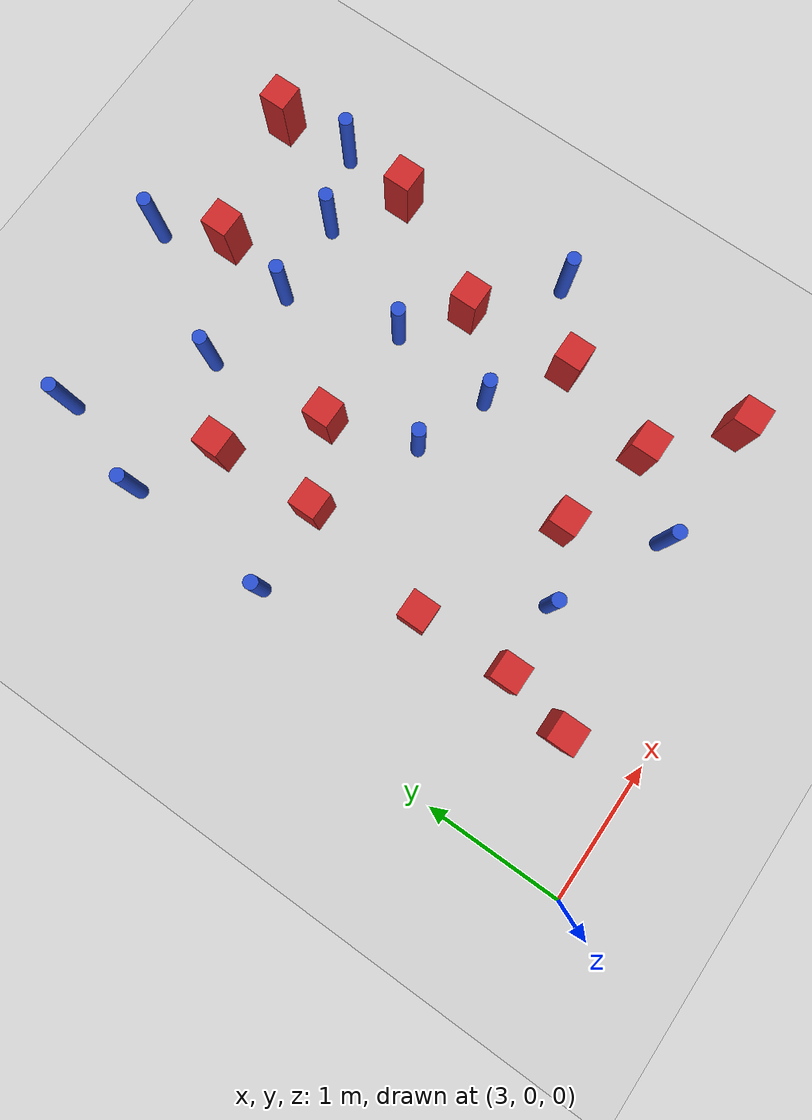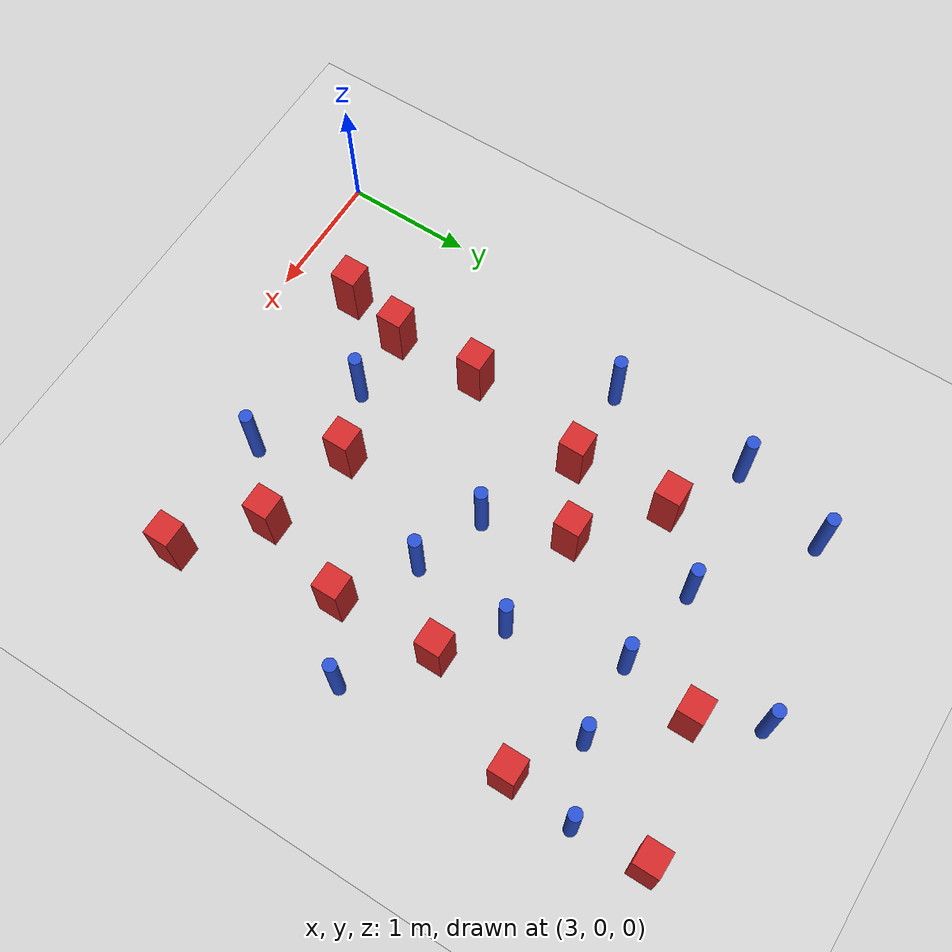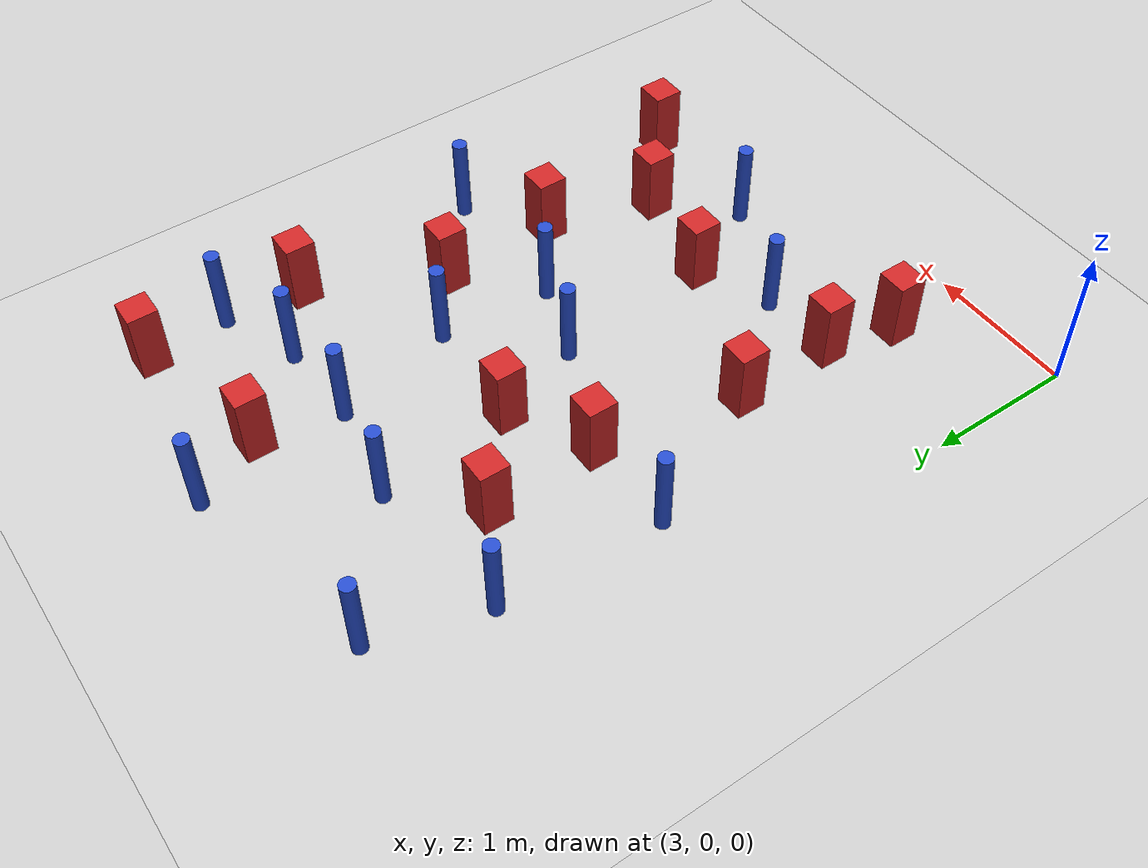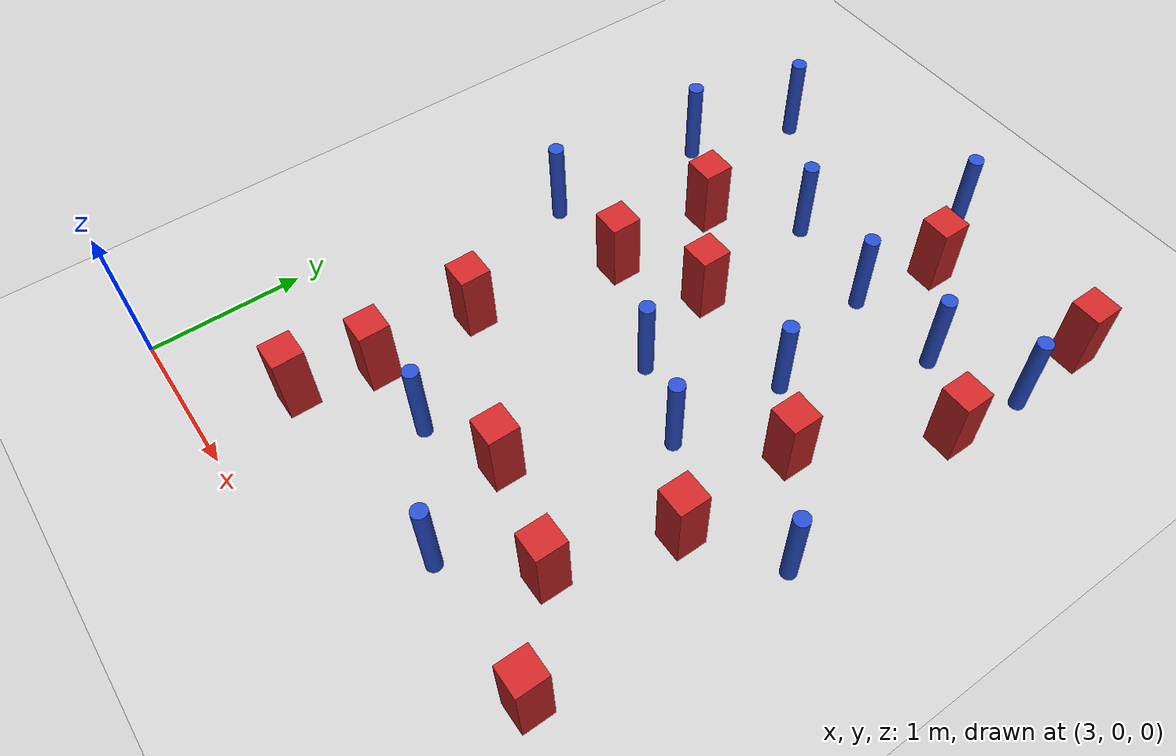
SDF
<sdf version="1.6">
 <world name="default">
  <model name="ground_plane">
   <static>1</static>
   <link name="link">
    <collision name="collision">
     <geometry><plane><normal>0 0 1</normal><size>100 100</size></plane></geometry>
     <surface><friction><ode><mu>100</mu><mu2>50</mu2></ode></friction></surface>
    </collision>
    <visual name="visual">
     <cast_shadows>0</cast_shadows>
     <geometry><plane><normal>0 0 1</normal><size>100 100</size></plane></geometry>
     <material>
      <ambient>1.0 1.0 1.0 1.0</ambient>
      <diffuse>0.8 0.8 0.8 1.0</diffuse>
      <specular>0.01 0.01 0.01 1.000000</specular>
     </material>
    </visual>
   </link>
  </model>
  <model name="square_post_obstacle26">
   <static>true</static>
   <pose>5.01945218155 1.30761017633 1.91545236811e-07 -7.35059704564e-06 1.12565212e-07 2.39332434364e-05</pose>
   <link name="link">
    <pose>0 0 0.25 0 -0 0</pose>
    <inertial>
     <mass>100</mass>
     <inertia>
      <ixx>0.166667</ixx>
      <ixy>0</ixy>
      <ixz>0</ixz>
      <iyy>0.166667</iyy>
      <iyz>0</iyz>
      <izz>0.166667</izz>
     </inertia>
    </inertial>
    <collision name="collision"><geometry><box><size>.2 .2 .5</size></box></geometry></collision>
    <visual name="visual">
     <geometry><box><size>.2 .2 .5</size></box></geometry>
     <material>
      <script><name>Gazebo/Red</name><uri>file://media/materials/scripts/gazebo.material</uri></script>
     </material>
    </visual>
   </link>
  </model>
  <model name="pole_obstacle21">
   <static>true</static>
   <pose>3.57852306725 3.81296826956 7.38925637345e-09 -8.47170692798e-08 1.24976764939e-08 -1.74513093025e-07</pose>
   <link name="link">
    <pose>0 0 0.3 0 -0 0</pose>
    <inertial>
     <mass>1</mass>
     <inertia><ixx>0.145833</ixx><ixy>0</ixy><ixz>0</ixz><iyy>0.145833</iyy><iyz>0</iyz><izz>0.125</izz></inertia>
    </inertial>
    <collision name="collision">
     <geometry><cylinder><radius>0.05</radius><length>.6</length></cylinder></geometry>
    </collision>
    <visual name="visual">
     <geometry><cylinder><radius>0.05</radius><length>.6</length></cylinder></geometry>
     <material>
      <script><name>Gazebo/Blue</name><uri>file://media/materials/scripts/gazebo.material</uri></script>
     </material>
    </visual>
   </link>
  </model>
  <model name="square_post_obstacle33">
   <static>true</static>
   <pose>6.36885371622 3.54152186159 1.91545236811e-07 -7.35059704564e-06 1.12565212e-07 2.39332434364e-05</pose>
   <link name="link">
    <pose>0 0 0.25 0 -0 0</pose>
    <inertial>
     <mass>100</mass>
     <inertia>
      <ixx>0.166667</ixx>
      <ixy>0</ixy>
      <ixz>0</ixz>
      <iyy>0.166667</iyy>
      <iyz>0</iyz>
      <izz>0.166667</izz>
     </inertia>
    </inertial>
    <collision name="collision"><geometry><box><size>.2 .2 .5</size></box></geometry></collision>
    <visual name="visual">
     <geometry><box><size>.2 .2 .5</size></box></geometry>
     <material>
      <script><name>Gazebo/Red</name><uri>file://media/materials/scripts/gazebo.material</uri></script>
     </material>
    </visual>
   </link>
  </model>
  <model name="pole_obstacle34">
   <static>true</static>
   <pose>4.60796828757 3.93987516932 7.38925637345e-09 -8.47170692798e-08 1.24976764937e-08 -1.74513093023e-07</pose>
   <link name="link">
    <pose>0 0 0.3 0 -0 0</pose>
    <inertial>
     <mass>1</mass>
     <inertia><ixx>0.145833</ixx><ixy>0</ixy><ixz>0</ixz><iyy>0.145833</iyy><iyz>0</iyz><izz>0.125</izz></inertia>
    </inertial>
    <collision name="collision">
     <geometry><cylinder><radius>0.05</radius><length>.6</length></cylinder></geometry>
    </collision>
    <visual name="visual">
     <geometry><cylinder><radius>0.05</radius><length>.6</length></cylinder></geometry>
     <material>
      <script><name>Gazebo/Blue</name><uri>file://media/materials/scripts/gazebo.material</uri></script>
     </material>
    </visual>
   </link>
  </model>
  <model name="pole_obstacle40">
   <static>true</static>
   <pose>5.30371421879 0.694664891359 7.38925637345e-09 -8.47170692799e-08 1.24976765038e-08 -1.74513093018e-07</pose>
   <link name="link">
    <pose>0 0 0.3 0 -0 0</pose>
    <inertial>
     <mass>1</mass>
     <inertia><ixx>0.145833</ixx><ixy>0</ixy><ixz>0</ixz><iyy>0.145833</iyy><iyz>0</iyz><izz>0.125</izz></inertia>
    </inertial>
    <collision name="collision">
     <geometry><cylinder><radius>0.05</radius><length>.6</length></cylinder></geometry>
    </collision>
    <visual name="visual">
     <geometry><cylinder><radius>0.05</radius><length>.6</length></cylinder></geometry>
     <material>
      <script><name>Gazebo/Blue</name><uri>file://media/materials/scripts/gazebo.material</uri></script>
     </material>
    </visual>
   </link>
  </model>
  <model name="square_post_obstacle56">
   <static>true</static>
   <pose>3.97602311547 1.76277531821 1.91545236811e-07 -7.35059704564e-06 1.12565212e-07 2.39332434364e-05</pose>
   <link name="link">
    <pose>0 0 0.25 0 -0 0</pose>
    <inertial>
     <mass>100</mass>
     <inertia>
      <ixx>0.166667</ixx>
      <ixy>0</ixy>
      <ixz>0</ixz>
      <iyy>0.166667</iyy>
      <iyz>0</iyz>
      <izz>0.166667</izz>
     </inertia>
    </inertial>
    <collision name="collision"><geometry><box><size>.2 .2 .5</size></box></geometry></collision>
    <visual name="visual">
     <geometry><box><size>.2 .2 .5</size></box></geometry>
     <material>
      <script><name>Gazebo/Red</name><uri>file://media/materials/scripts/gazebo.material</uri></script>
     </material>
    </visual>
   </link>
  </model>
  <model name="square_post_obstacle58">
   <static>true</static>
   <pose>5.92137590437 2.68245180076 1.91545236811e-07 -7.35059704564e-06 1.12565212e-07 2.39332434364e-05</pose>
   <link name="link">
    <pose>0 0 0.25 0 -0 0</pose>
    <inertial>
     <mass>100</mass>
     <inertia>
      <ixx>0.166667</ixx>
      <ixy>0</ixy>
      <ixz>0</ixz>
      <iyy>0.166667</iyy>
      <iyz>0</iyz>
      <izz>0.166667</izz>
     </inertia>
    </inertial>
    <collision name="collision"><geometry><box><size>.2 .2 .5</size></box></geometry></collision>
    <visual name="visual">
     <geometry><box><size>.2 .2 .5</size></box></geometry>
     <material>
      <script><name>Gazebo/Red</name><uri>file://media/materials/scripts/gazebo.material</uri></script>
     </material>
    </visual>
   </link>
  </model>
  <model name="square_post_obstacle61">
   <static>true</static>
   <pose>5.73949888242 1.13760612837 1.91545236811e-07 -7.35059704564e-06 1.12565212e-07 2.39332434364e-05</pose>
   <link name="link">
    <pose>0 0 0.25 0 -0 0</pose>
    <inertial>
     <mass>100</mass>
     <inertia>
      <ixx>0.166667</ixx>
      <ixy>0</ixy>
      <ixz>0</ixz>
      <iyy>0.166667</iyy>
      <iyz>0</iyz>
      <izz>0.166667</izz>
     </inertia>
    </inertial>
    <collision name="collision"><geometry><box><size>.2 .2 .5</size></box></geometry></collision>
    <visual name="visual">
     <geometry><box><size>.2 .2 .5</size></box></geometry>
     <material>
      <script><name>Gazebo/Red</name><uri>file://media/materials/scripts/gazebo.material</uri></script>
     </material>
    </visual>
   </link>
  </model>
  <model name="square_post_obstacle64">
   <static>true</static>
   <pose>4.16203594431 2.74365635211 1.91545236811e-07 -7.35059704564e-06 1.12565212e-07 2.39332434364e-05</pose>
   <link name="link">
    <pose>0 0 0.25 0 -0 0</pose>
    <inertial>
     <mass>100</mass>
     <inertia>
      <ixx>0.166667</ixx>
      <ixy>0</ixy>
      <ixz>0</ixz>
      <iyy>0.166667</iyy>
      <iyz>0</iyz>
      <izz>0.166667</izz>
     </inertia>
    </inertial>
    <collision name="collision"><geometry><box><size>.2 .2 .5</size></box></geometry></collision>
    <visual name="visual">
     <geometry><box><size>.2 .2 .5</size></box></geometry>
     <material>
      <script><name>Gazebo/Red</name><uri>file://media/materials/scripts/gazebo.material</uri></script>
     </material>
    </visual>
   </link>
  </model>
  <model name="pole_obstacle72">
   <static>true</static>
   <pose>5.28883919184 3.82008956437 7.38925637345e-09 -8.47170692798e-08 1.24976764937e-08 -1.74513093023e-07</pose>
   <link name="link">
    <pose>0 0 0.3 0 -0 0</pose>
    <inertial>
     <mass>1</mass>
     <inertia><ixx>0.145833</ixx><ixy>0</ixy><ixz>0</ixz><iyy>0.145833</iyy><iyz>0</iyz><izz>0.125</izz></inertia>
    </inertial>
    <collision name="collision">
     <geometry><cylinder><radius>0.05</radius><length>.6</length></cylinder></geometry>
    </collision>
    <visual name="visual">
     <geometry><cylinder><radius>0.05</radius><length>.6</length></cylinder></geometry>
     <material>
      <script><name>Gazebo/Blue</name><uri>file://media/materials/scripts/gazebo.material</uri></script>
     </material>
    </visual>
   </link>
  </model>
  <model name="pole_obstacle77">
   <static>true</static>
   <pose>5.5066604686 2.98591496148 7.38925637345e-09 -8.47170692798e-08 1.24976764937e-08 -1.74513093023e-07</pose>
   <link name="link">
    <pose>0 0 0.3 0 -0 0</pose>
    <inertial>
     <mass>1</mass>
     <inertia><ixx>0.145833</ixx><ixy>0</ixy><ixz>0</ixz><iyy>0.145833</iyy><iyz>0</iyz><izz>0.125</izz></inertia>
    </inertial>
    <collision name="collision">
     <geometry><cylinder><radius>0.05</radius><length>.6</length></cylinder></geometry>
    </collision>
    <visual name="visual">
     <geometry><cylinder><radius>0.05</radius><length>.6</length></cylinder></geometry>
     <material>
      <script><name>Gazebo/Blue</name><uri>file://media/materials/scripts/gazebo.material</uri></script>
     </material>
    </visual>
   </link>
  </model>
  <model name="pole_obstacle84">
   <static>true</static>
   <pose>5.8953983592 3.85170807815 7.38925637345e-09 -8.47170692798e-08 1.24976764937e-08 -1.74513093023e-07</pose>
   <link name="link">
    <pose>0 0 0.3 0 -0 0</pose>
    <inertial>
     <mass>1</mass>
     <inertia><ixx>0.145833</ixx><ixy>0</ixy><ixz>0</ixz><iyy>0.145833</iyy><iyz>0</iyz><izz>0.125</izz></inertia>
    </inertial>
    <collision name="collision">
     <geometry><cylinder><radius>0.05</radius><length>.6</length></cylinder></geometry>
    </collision>
    <visual name="visual">
     <geometry><cylinder><radius>0.05</radius><length>.6</length></cylinder></geometry>
     <material>
      <script><name>Gazebo/Blue</name><uri>file://media/materials/scripts/gazebo.material</uri></script>
     </material>
    </visual>
   </link>
  </model>
  <model name="pole_obstacle98">
   <static>true</static>
   <pose>3.79694006744 4.54510872652 7.38925637345e-09 -8.47170692798e-08 1.24976765033e-08 -1.74513093019e-07</pose>
   <link name="link">
    <pose>0 0 0.3 0 -0 0</pose>
    <inertial>
     <mass>1</mass>
     <inertia><ixx>0.145833</ixx><ixy>0</ixy><ixz>0</ixz><iyy>0.145833</iyy><iyz>0</iyz><izz>0.125</izz></inertia>
    </inertial>
    <collision name="collision">
     <geometry><cylinder><radius>0.05</radius><length>.6</length></cylinder></geometry>
    </collision>
    <visual name="visual">
     <geometry><cylinder><radius>0.05</radius><length>.6</length></cylinder></geometry>
     <material>
      <script><name>Gazebo/Blue</name><uri>file://media/materials/scripts/gazebo.material</uri></script>
     </material>
    </visual>
   </link>
  </model>
  <model name="square_post_obstacle91">
   <static>true</static>
   <pose>3.99244737672 1.07233325912 1.91545236811e-07 -7.35059704564e-06 1.12565212e-07 2.39332434364e-05</pose>
   <link name="link">
    <pose>0 0 0.25 0 -0 0</pose>
    <inertial>
     <mass>100</mass>
     <inertia>
      <ixx>0.166667</ixx>
      <ixy>0</ixy>
      <ixz>0</ixz>
      <iyy>0.166667</iyy>
      <iyz>0</iyz>
      <izz>0.166667</izz>
     </inertia>
    </inertial>
    <collision name="collision"><geometry><box><size>.2 .2 .5</size></box></geometry></collision>
    <visual name="visual">
     <geometry><box><size>.2 .2 .5</size></box></geometry>
     <material>
      <script><name>Gazebo/Red</name><uri>file://media/materials/scripts/gazebo.material</uri></script>
     </material>
    </visual>
   </link>
  </model>
  <model name="pole_obstacle106">
   <static>true</static>
   <pose>4.51753531283 1.08375698569 7.38925637345e-09 -8.471706928e-08 1.24976765134e-08 -1.74513093015e-07</pose>
   <link name="link">
    <pose>0 0 0.3 0 -0 0</pose>
    <inertial>
     <mass>1</mass>
     <inertia><ixx>0.145833</ixx><ixy>0</ixy><ixz>0</ixz><iyy>0.145833</iyy><iyz>0</iyz><izz>0.125</izz></inertia>
    </inertial>
    <collision name="collision">
     <geometry><cylinder><radius>0.05</radius><length>.6</length></cylinder></geometry>
    </collision>
    <visual name="visual">
     <geometry><cylinder><radius>0.05</radius><length>.6</length></cylinder></geometry>
     <material>
      <script><name>Gazebo/Blue</name><uri>file://media/materials/scripts/gazebo.material</uri></script>
     </material>
    </visual>
   </link>
  </model>
  <model name="pole_obstacle119">
   <static>true</static>
   <pose>6.4260833534 4.06566936149 7.38925637345e-09 -8.47170692796e-08 1.24976764786e-08 -1.74513093032e-07</pose>
   <link name="link">
    <pose>0 0 0.3 0 -0 0</pose>
    <inertial>
     <mass>1</mass>
     <inertia><ixx>0.145833</ixx><ixy>0</ixy><ixz>0</ixz><iyy>0.145833</iyy><iyz>0</iyz><izz>0.125</izz></inertia>
    </inertial>
    <collision name="collision">
     <geometry><cylinder><radius>0.05</radius><length>.6</length></cylinder></geometry>
    </collision>
    <visual name="visual">
     <geometry><cylinder><radius>0.05</radius><length>.6</length></cylinder></geometry>
     <material>
      <script><name>Gazebo/Blue</name><uri>file://media/materials/scripts/gazebo.material</uri></script>
     </material>
    </visual>
   </link>
  </model>
  <model name="pole_obstacle125">
   <static>true</static>
   <pose>3.51871331285 2.71443841695 7.38925637345e-09 -8.47170692798e-08 1.24976764939e-08 -1.74513093025e-07</pose>
   <link name="link">
    <pose>0 0 0.3 0 -0 0</pose>
    <inertial>
     <mass>1</mass>
     <inertia><ixx>0.145833</ixx><ixy>0</ixy><ixz>0</ixz><iyy>0.145833</iyy><iyz>0</iyz><izz>0.125</izz></inertia>
    </inertial>
    <collision name="collision">
     <geometry><cylinder><radius>0.05</radius><length>.6</length></cylinder></geometry>
    </collision>
    <visual name="visual">
     <geometry><cylinder><radius>0.05</radius><length>.6</length></cylinder></geometry>
     <material>
      <script><name>Gazebo/Blue</name><uri>file://media/materials/scripts/gazebo.material</uri></script>
     </material>
    </visual>
   </link>
  </model>
  <model name="square_post_obstacle119">
   <static>true</static>
   <pose>6.26309046809 0.683885494542 1.91545236811e-07 -7.35059704564e-06 1.12565212e-07 2.39332434364e-05</pose>
   <link name="link">
    <pose>0 0 0.25 0 -0 0</pose>
    <inertial>
     <mass>100</mass>
     <inertia>
      <ixx>0.166667</ixx>
      <ixy>0</ixy>
      <ixz>0</ixz>
      <iyy>0.166667</iyy>
      <iyz>0</iyz>
      <izz>0.166667</izz>
     </inertia>
    </inertial>
    <collision name="collision"><geometry><box><size>.2 .2 .5</size></box></geometry></collision>
    <visual name="visual">
     <geometry><box><size>.2 .2 .5</size></box></geometry>
     <material>
      <script><name>Gazebo/Red</name><uri>file://media/materials/scripts/gazebo.material</uri></script>
     </material>
    </visual>
   </link>
  </model>
  <model name="square_post_obstacle138">
   <static>true</static>
   <pose>5.38997732978 4.37417145799 1.91545236811e-07 -7.35059704564e-06 1.12565212e-07 2.39332434364e-05</pose>
   <link name="link">
    <pose>0 0 0.25 0 -0 0</pose>
    <inertial>
     <mass>100</mass>
     <inertia>
      <ixx>0.166667</ixx>
      <ixy>0</ixy>
      <ixz>0</ixz>
      <iyy>0.166667</iyy>
      <iyz>0</iyz>
      <izz>0.166667</izz>
     </inertia>
    </inertial>
    <collision name="collision"><geometry><box><size>.2 .2 .5</size></box></geometry></collision>
    <visual name="visual">
     <geometry><box><size>.2 .2 .5</size></box></geometry>
     <material>
      <script><name>Gazebo/Red</name><uri>file://media/materials/scripts/gazebo.material</uri></script>
     </material>
    </visual>
   </link>
  </model>
  <model name="pole_obstacle150">
   <static>true</static>
   <pose>5.17111351861 4.83644780608 7.38925637345e-09 -8.47170692796e-08 1.24976764786e-08 -1.74513093032e-07</pose>
   <link name="link">
    <pose>0 0 0.3 0 -0 0</pose>
    <inertial>
     <mass>1</mass>
     <inertia><ixx>0.145833</ixx><ixy>0</ixy><ixz>0</ixz><iyy>0.145833</iyy><iyz>0</iyz><izz>0.125</izz></inertia>
    </inertial>
    <collision name="collision">
     <geometry><cylinder><radius>0.05</radius><length>.6</length></cylinder></geometry>
    </collision>
    <visual name="visual">
     <geometry><cylinder><radius>0.05</radius><length>.6</length></cylinder></geometry>
     <material>
      <script><name>Gazebo/Blue</name><uri>file://media/materials/scripts/gazebo.material</uri></script>
     </material>
    </visual>
   </link>
  </model>
  <model name="pole_obstacle158">
   <static>true</static>
   <pose>6.46131106012 2.22980184369 7.38925637345e-09 -8.47170692798e-08 1.24976764937e-08 -1.74513093023e-07</pose>
   <link name="link">
    <pose>0 0 0.3 0 -0 0</pose>
    <inertial>
     <mass>1</mass>
     <inertia><ixx>0.145833</ixx><ixy>0</ixy><ixz>0</ixz><iyy>0.145833</iyy><iyz>0</iyz><izz>0.125</izz></inertia>
    </inertial>
    <collision name="collision">
     <geometry><cylinder><radius>0.05</radius><length>.6</length></cylinder></geometry>
    </collision>
    <visual name="visual">
     <geometry><cylinder><radius>0.05</radius><length>.6</length></cylinder></geometry>
     <material>
      <script><name>Gazebo/Blue</name><uri>file://media/materials/scripts/gazebo.material</uri></script>
     </material>
    </visual>
   </link>
  </model>
  <model name="square_post_obstacle154">
   <static>true</static>
   <pose>4.13322176871 3.50057650504 1.91545236811e-07 -7.35059704564e-06 1.12565212e-07 2.39332434364e-05</pose>
   <link name="link">
    <pose>0 0 0.25 0 -0 0</pose>
    <inertial>
     <mass>100</mass>
     <inertia>
      <ixx>0.166667</ixx>
      <ixy>0</ixy>
      <ixz>0</ixz>
      <iyy>0.166667</iyy>
      <iyz>0</iyz>
      <izz>0.166667</izz>
     </inertia>
    </inertial>
    <collision name="collision"><geometry><box><size>.2 .2 .5</size></box></geometry></collision>
    <visual name="visual">
     <geometry><box><size>.2 .2 .5</size></box></geometry>
     <material>
      <script><name>Gazebo/Red</name><uri>file://media/materials/scripts/gazebo.material</uri></script>
     </material>
    </visual>
   </link>
  </model>
  <model name="square_post_obstacle159">
   <static>true</static>
   <pose>3.88069820759 0.583247028452 1.91545236811e-07 -7.35059704564e-06 1.12565212e-07 2.39332434364e-05</pose>
   <link name="link">
    <pose>0 0 0.25 0 -0 0</pose>
    <inertial>
     <mass>100</mass>
     <inertia>
      <ixx>0.166667</ixx>
      <ixy>0</ixy>
      <ixz>0</ixz>
      <iyy>0.166667</iyy>
      <iyz>0</iyz>
      <izz>0.166667</izz>
     </inertia>
    </inertial>
    <collision name="collision"><geometry><box><size>.2 .2 .5</size></box></geometry></collision>
    <visual name="visual">
     <geometry><box><size>.2 .2 .5</size></box></geometry>
     <material>
      <script><name>Gazebo/Red</name><uri>file://media/materials/scripts/gazebo.material</uri></script>
     </material>
    </visual>
   </link>
  </model>
  <model name="square_post_obstacle177">
   <static>true</static>
   <pose>5.96098492398 1.87808114242 1.91545236811e-07 -7.35059704564e-06 1.12565212e-07 2.39332434364e-05</pose>
   <link name="link">
    <pose>0 0 0.25 0 -0 0</pose>
    <inertial>
     <mass>100</mass>
     <inertia>
      <ixx>0.166667</ixx>
      <ixy>0</ixy>
      <ixz>0</ixz>
      <iyy>0.166667</iyy>
      <iyz>0</iyz>
      <izz>0.166667</izz>
     </inertia>
    </inertial>
    <collision name="collision"><geometry><box><size>.2 .2 .5</size></box></geometry></collision>
    <visual name="visual">
     <geometry><box><size>.2 .2 .5</size></box></geometry>
     <material>
      <script><name>Gazebo/Red</name><uri>file://media/materials/scripts/gazebo.material</uri></script>
     </material>
    </visual>
   </link>
  </model>
  <model name="pole_obstacle193">
   <static>true</static>
   <pose>5.44827505243 2.21811820803 7.38925637345e-09 -8.47170692798e-08 1.24976764937e-08 -1.74513093023e-07</pose>
   <link name="link">
    <pose>0 0 0.3 0 -0 0</pose>
    <inertial>
     <mass>1</mass>
     <inertia><ixx>0.145833</ixx><ixy>0</ixy><ixz>0</ixz><iyy>0.145833</iyy><iyz>0</iyz><izz>0.125</izz></inertia>
    </inertial>
    <collision name="collision">
     <geometry><cylinder><radius>0.05</radius><length>.6</length></cylinder></geometry>
    </collision>
    <visual name="visual">
     <geometry><cylinder><radius>0.05</radius><length>.6</length></cylinder></geometry>
     <material>
      <script><name>Gazebo/Blue</name><uri>file://media/materials/scripts/gazebo.material</uri></script>
     </material>
    </visual>
   </link>
  </model>
  <model name="pole_obstacle205">
   <static>true</static>
   <pose>4.91408374949 2.41124155223 7.38925637345e-09 -8.47170692798e-08 1.24976764937e-08 -1.74513093023e-07</pose>
   <link name="link">
    <pose>0 0 0.3 0 -0 0</pose>
    <inertial>
     <mass>1</mass>
     <inertia><ixx>0.145833</ixx><ixy>0</ixy><ixz>0</ixz><iyy>0.145833</iyy><iyz>0</iyz><izz>0.125</izz></inertia>
    </inertial>
    <collision name="collision">
     <geometry><cylinder><radius>0.05</radius><length>.6</length></cylinder></geometry>
    </collision>
    <visual name="visual">
     <geometry><cylinder><radius>0.05</radius><length>.6</length></cylinder></geometry>
     <material>
      <script><name>Gazebo/Blue</name><uri>file://media/materials/scripts/gazebo.material</uri></script>
     </material>
    </visual>
   </link>
  </model>
  <model name="square_post_obstacle204">
   <static>true</static>
   <pose>4.70128881635 3.02647997451 1.91545236811e-07 -7.35059704564e-06 1.12565212e-07 2.39332434364e-05</pose>
   <link name="link">
    <pose>0 0 0.25 0 -0 0</pose>
    <inertial>
     <mass>100</mass>
     <inertia>
      <ixx>0.166667</ixx>
      <ixy>0</ixy>
      <ixz>0</ixz>
      <iyy>0.166667</iyy>
      <iyz>0</iyz>
      <izz>0.166667</izz>
     </inertia>
    </inertial>
    <collision name="collision"><geometry><box><size>.2 .2 .5</size></box></geometry></collision>
    <visual name="visual">
     <geometry><box><size>.2 .2 .5</size></box></geometry>
     <material>
      <script><name>Gazebo/Red</name><uri>file://media/materials/scripts/gazebo.material</uri></script>
     </material>
    </visual>
   </link>
  </model>
  <model name="square_post_obstacle219">
   <static>true</static>
   <pose>6.3770999648 4.60640998808 1.91545236811e-07 -7.35059704564e-06 1.12565212e-07 2.39332434364e-05</pose>
   <link name="link">
    <pose>0 0 0.25 0 -0 0</pose>
    <inertial>
     <mass>100</mass>
     <inertia>
      <ixx>0.166667</ixx>
      <ixy>0</ixy>
      <ixz>0</ixz>
      <iyy>0.166667</iyy>
      <iyz>0</iyz>
      <izz>0.166667</izz>
     </inertia>
    </inertial>
    <collision name="collision"><geometry><box><size>.2 .2 .5</size></box></geometry></collision>
    <visual name="visual">
     <geometry><box><size>.2 .2 .5</size></box></geometry>
     <material>
      <script><name>Gazebo/Red</name><uri>file://media/materials/scripts/gazebo.material</uri></script>
     </material>
    </visual>
   </link>
  </model>
 </world>
</sdf>
